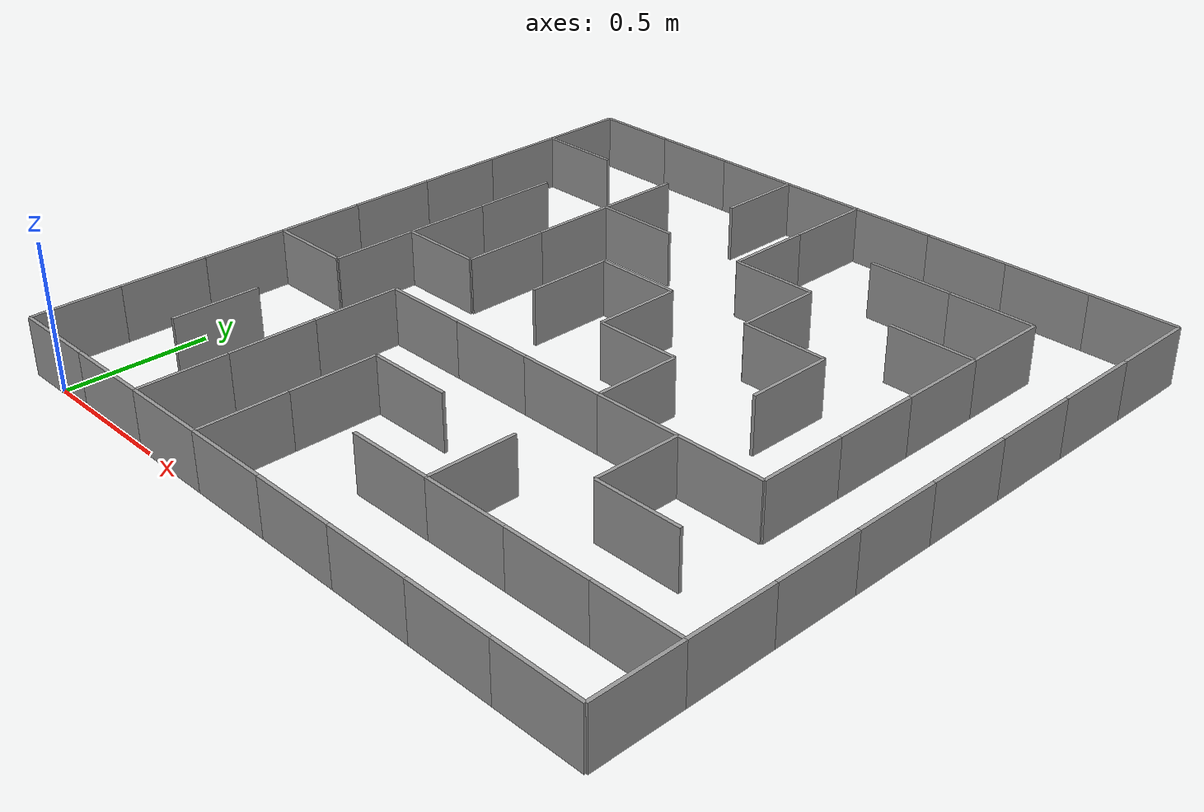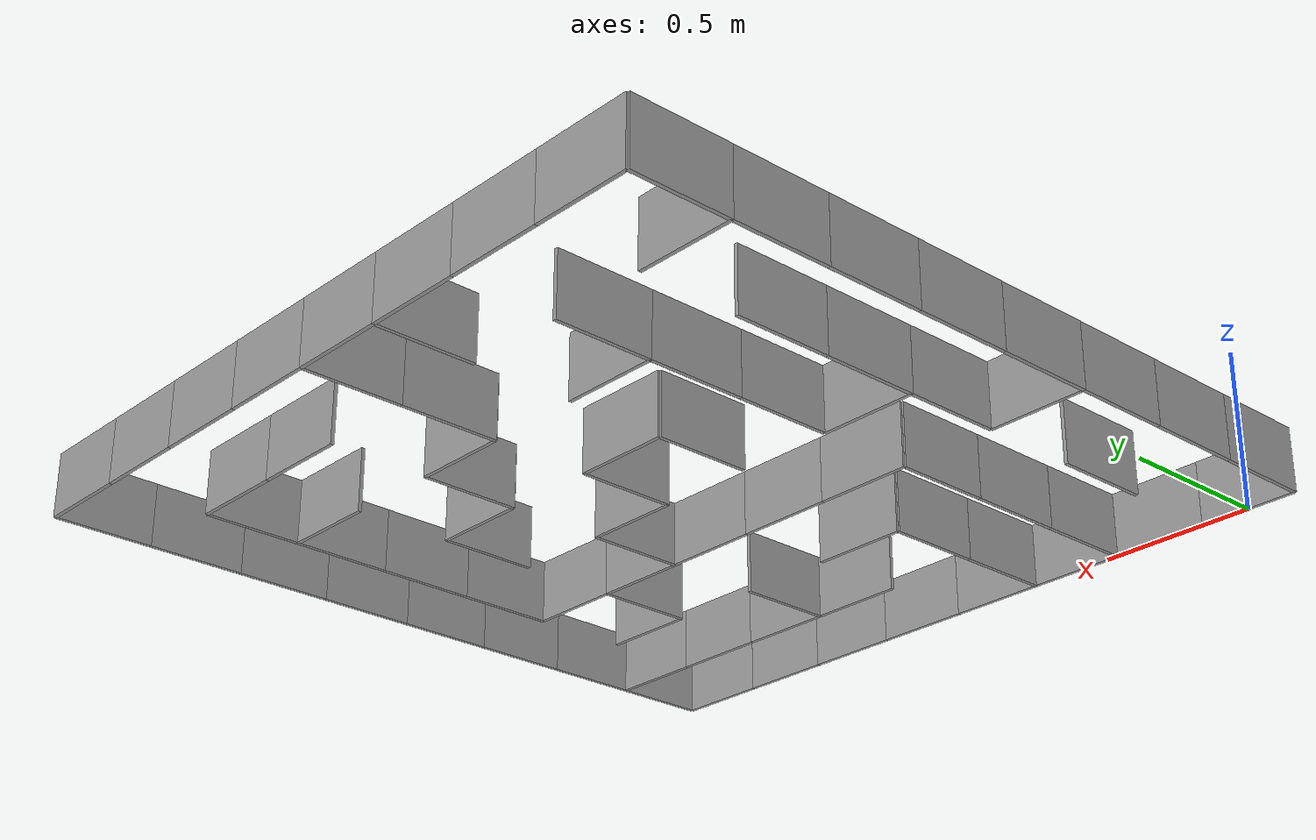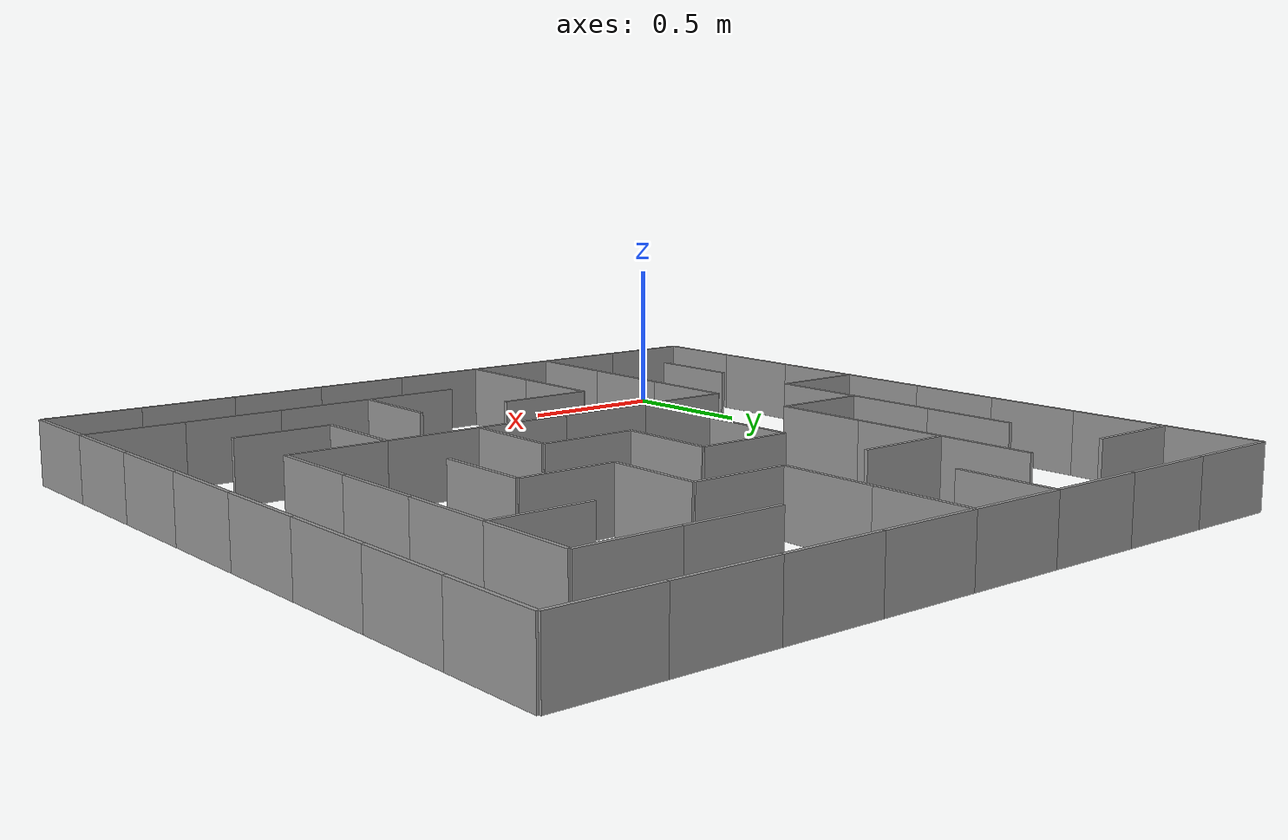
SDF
<?xml version='1.0'?>
<sdf version='1.7'>
  <model name='Untitled'>
    <pose>0 0 0 0 -0 0</pose>
    <link name='Wall_0'>
      <collision name='Wall_0_Collision'>
        <geometry>
          <box>
            <size>0.31 0.012 0.20</size>
          </box>
        </geometry>
        <pose>0 0 0.1 0 -0 0</pose>
      </collision>
      <visual name='Wall_0_Visual'>
        <pose>0 0 0.1 0 -0 0</pose>
        <geometry>
          <box>
            <size>0.31 0.012 0.20</size>
          </box>
        </geometry>
        <material>
          <script>
            <uri>file://media/materials/scripts/gazebo.material</uri>
            <name>Gazebo/Grey</name>
          </script>
          <ambient>1 1 1 1</ambient>
        </material>
        <meta>
          <layer>0</layer>
        </meta>
      </visual>
      <pose>0.0 0.0 0 0 0 0</pose>
    </link><link name='Wall_1'>
      <collision name='Wall_1_Collision'>
        <geometry>
          <box>
            <size>0.31 0.012 0.20</size>
          </box>
        </geometry>
        <pose>0 0 0.1 0 -0 0</pose>
      </collision>
      <visual name='Wall_1_Visual'>
        <pose>0 0 0.1 0 -0 0</pose>
        <geometry>
          <box>
            <size>0.31 0.012 0.20</size>
          </box>
        </geometry>
        <material>
          <script>
            <uri>file://media/materials/scripts/gazebo.material</uri>
            <name>Gazebo/Grey</name>
          </script>
          <ambient>1 1 1 1</ambient>
        </material>
        <meta>
          <layer>0</layer>
        </meta>
      </visual>
      <pose>0.0 0.9299999999999999 0 0 0 0</pose>
    </link><link name='Wall_2'>
      <collision name='Wall_2_Collision'>
        <geometry>
          <box>
            <size>0.31 0.012 0.20</size>
          </box>
        </geometry>
        <pose>0 0 0.1 0 -0 0</pose>
      </collision>
      <visual name='Wall_2_Visual'>
        <pose>0 0 0.1 0 -0 0</pose>
        <geometry>
          <box>
            <size>0.31 0.012 0.20</size>
          </box>
        </geometry>
        <material>
          <script>
            <uri>file://media/materials/scripts/gazebo.material</uri>
            <name>Gazebo/Grey</name>
          </script>
          <ambient>1 1 1 1</ambient>
        </material>
        <meta>
          <layer>0</layer>
        </meta>
      </visual>
      <pose>0.0 2.17 0 0 0 0</pose>
    </link><link name='Wall_3'>
      <collision name='Wall_3_Collision'>
        <geometry>
          <box>
            <size>0.31 0.012 0.20</size>
          </box>
        </geometry>
        <pose>0 0 0.1 0 -0 0</pose>
      </collision>
      <visual name='Wall_3_Visual'>
        <pose>0 0 0.1 0 -0 0</pose>
        <geometry>
          <box>
            <size>0.31 0.012 0.20</size>
          </box>
        </geometry>
        <material>
          <script>
            <uri>file://media/materials/scripts/gazebo.material</uri>
            <name>Gazebo/Grey</name>
          </script>
          <ambient>1 1 1 1</ambient>
        </material>
        <meta>
          <layer>0</layer>
        </meta>
      </visual>
      <pose>0.0 2.48 0 0 0 0</pose>
    </link><link name='Wall_4'>
      <collision name='Wall_4_Collision'>
        <geometry>
          <box>
            <size>0.31 0.012 0.20</size>
          </box>
        </geometry>
        <pose>0 0 0.1 0 -0 0</pose>
      </collision>
      <visual name='Wall_4_Visual'>
        <pose>0 0 0.1 0 -0 0</pose>
        <geometry>
          <box>
            <size>0.31 0.012 0.20</size>
          </box>
        </geometry>
        <material>
          <script>
            <uri>file://media/materials/scripts/gazebo.material</uri>
            <name>Gazebo/Grey</name>
          </script>
          <ambient>1 1 1 1</ambient>
        </material>
        <meta>
          <layer>0</layer>
        </meta>
      </visual>
      <pose>0.31 0.0 0 0 0 0</pose>
    </link><link name='Wall_5'>
      <collision name='Wall_5_Collision'>
        <geometry>
          <box>
            <size>0.31 0.012 0.20</size>
          </box>
        </geometry>
        <pose>0 0 0.1 0 -0 0</pose>
      </collision>
      <visual name='Wall_5_Visual'>
        <pose>0 0 0.1 0 -0 0</pose>
        <geometry>
          <box>
            <size>0.31 0.012 0.20</size>
          </box>
        </geometry>
        <material>
          <script>
            <uri>file://media/materials/scripts/gazebo.material</uri>
            <name>Gazebo/Grey</name>
          </script>
          <ambient>1 1 1 1</ambient>
        </material>
        <meta>
          <layer>0</layer>
        </meta>
      </visual>
      <pose>0.31 1.24 0 0 0 0</pose>
    </link><link name='Wall_6'>
      <collision name='Wall_6_Collision'>
        <geometry>
          <box>
            <size>0.31 0.012 0.20</size>
          </box>
        </geometry>
        <pose>0 0 0.1 0 -0 0</pose>
      </collision>
      <visual name='Wall_6_Visual'>
        <pose>0 0 0.1 0 -0 0</pose>
        <geometry>
          <box>
            <size>0.31 0.012 0.20</size>
          </box>
        </geometry>
        <material>
          <script>
            <uri>file://media/materials/scripts/gazebo.material</uri>
            <name>Gazebo/Grey</name>
          </script>
          <ambient>1 1 1 1</ambient>
        </material>
        <meta>
          <layer>0</layer>
        </meta>
      </visual>
      <pose>0.31 2.48 0 0 0 0</pose>
    </link><link name='Wall_7'>
      <collision name='Wall_7_Collision'>
        <geometry>
          <box>
            <size>0.31 0.012 0.20</size>
          </box>
        </geometry>
        <pose>0 0 0.1 0 -0 0</pose>
      </collision>
      <visual name='Wall_7_Visual'>
        <pose>0 0 0.1 0 -0 0</pose>
        <geometry>
          <box>
            <size>0.31 0.012 0.20</size>
          </box>
        </geometry>
        <material>
          <script>
            <uri>file://media/materials/scripts/gazebo.material</uri>
            <name>Gazebo/Grey</name>
          </script>
          <ambient>1 1 1 1</ambient>
        </material>
        <meta>
          <layer>0</layer>
        </meta>
      </visual>
      <pose>0.62 0.0 0 0 0 0</pose>
    </link><link name='Wall_8'>
      <collision name='Wall_8_Collision'>
        <geometry>
          <box>
            <size>0.31 0.012 0.20</size>
          </box>
        </geometry>
        <pose>0 0 0.1 0 -0 0</pose>
      </collision>
      <visual name='Wall_8_Visual'>
        <pose>0 0 0.1 0 -0 0</pose>
        <geometry>
          <box>
            <size>0.31 0.012 0.20</size>
          </box>
        </geometry>
        <material>
          <script>
            <uri>file://media/materials/scripts/gazebo.material</uri>
            <name>Gazebo/Grey</name>
          </script>
          <ambient>1 1 1 1</ambient>
        </material>
        <meta>
          <layer>0</layer>
        </meta>
      </visual>
      <pose>0.62 0.9299999999999999 0 0 0 0</pose>
    </link><link name='Wall_9'>
      <collision name='Wall_9_Collision'>
        <geometry>
          <box>
            <size>0.31 0.012 0.20</size>
          </box>
        </geometry>
        <pose>0 0 0.1 0 -0 0</pose>
      </collision>
      <visual name='Wall_9_Visual'>
        <pose>0 0 0.1 0 -0 0</pose>
        <geometry>
          <box>
            <size>0.31 0.012 0.20</size>
          </box>
        </geometry>
        <material>
          <script>
            <uri>file://media/materials/scripts/gazebo.material</uri>
            <name>Gazebo/Grey</name>
          </script>
          <ambient>1 1 1 1</ambient>
        </material>
        <meta>
          <layer>0</layer>
        </meta>
      </visual>
      <pose>0.62 1.8599999999999999 0 0 0 0</pose>
    </link><link name='Wall_10'>
      <collision name='Wall_10_Collision'>
        <geometry>
          <box>
            <size>0.31 0.012 0.20</size>
          </box>
        </geometry>
        <pose>0 0 0.1 0 -0 0</pose>
      </collision>
      <visual name='Wall_10_Visual'>
        <pose>0 0 0.1 0 -0 0</pose>
        <geometry>
          <box>
            <size>0.31 0.012 0.20</size>
          </box>
        </geometry>
        <material>
          <script>
            <uri>file://media/materials/scripts/gazebo.material</uri>
            <name>Gazebo/Grey</name>
          </script>
          <ambient>1 1 1 1</ambient>
        </material>
        <meta>
          <layer>0</layer>
        </meta>
      </visual>
      <pose>0.62 2.48 0 0 0 0</pose>
    </link><link name='Wall_11'>
      <collision name='Wall_11_Collision'>
        <geometry>
          <box>
            <size>0.31 0.012 0.20</size>
          </box>
        </geometry>
        <pose>0 0 0.1 0 -0 0</pose>
      </collision>
      <visual name='Wall_11_Visual'>
        <pose>0 0 0.1 0 -0 0</pose>
        <geometry>
          <box>
            <size>0.31 0.012 0.20</size>
          </box>
        </geometry>
        <material>
          <script>
            <uri>file://media/materials/scripts/gazebo.material</uri>
            <name>Gazebo/Grey</name>
          </script>
          <ambient>1 1 1 1</ambient>
        </material>
        <meta>
          <layer>0</layer>
        </meta>
      </visual>
      <pose>0.9299999999999999 0.0 0 0 0 0</pose>
    </link><link name='Wall_12'>
      <collision name='Wall_12_Collision'>
        <geometry>
          <box>
            <size>0.31 0.012 0.20</size>
          </box>
        </geometry>
        <pose>0 0 0.1 0 -0 0</pose>
      </collision>
      <visual name='Wall_12_Visual'>
        <pose>0 0 0.1 0 -0 0</pose>
        <geometry>
          <box>
            <size>0.31 0.012 0.20</size>
          </box>
        </geometry>
        <material>
          <script>
            <uri>file://media/materials/scripts/gazebo.material</uri>
            <name>Gazebo/Grey</name>
          </script>
          <ambient>1 1 1 1</ambient>
        </material>
        <meta>
          <layer>0</layer>
        </meta>
      </visual>
      <pose>0.9299999999999999 0.62 0 0 0 0</pose>
    </link><link name='Wall_13'>
      <collision name='Wall_13_Collision'>
        <geometry>
          <box>
            <size>0.31 0.012 0.20</size>
          </box>
        </geometry>
        <pose>0 0 0.1 0 -0 0</pose>
      </collision>
      <visual name='Wall_13_Visual'>
        <pose>0 0 0.1 0 -0 0</pose>
        <geometry>
          <box>
            <size>0.31 0.012 0.20</size>
          </box>
        </geometry>
        <material>
          <script>
            <uri>file://media/materials/scripts/gazebo.material</uri>
            <name>Gazebo/Grey</name>
          </script>
          <ambient>1 1 1 1</ambient>
        </material>
        <meta>
          <layer>0</layer>
        </meta>
      </visual>
      <pose>0.9299999999999999 0.9299999999999999 0 0 0 0</pose>
    </link><link name='Wall_14'>
      <collision name='Wall_14_Collision'>
        <geometry>
          <box>
            <size>0.31 0.012 0.20</size>
          </box>
        </geometry>
        <pose>0 0 0.1 0 -0 0</pose>
      </collision>
      <visual name='Wall_14_Visual'>
        <pose>0 0 0.1 0 -0 0</pose>
        <geometry>
          <box>
            <size>0.31 0.012 0.20</size>
          </box>
        </geometry>
        <material>
          <script>
            <uri>file://media/materials/scripts/gazebo.material</uri>
            <name>Gazebo/Grey</name>
          </script>
          <ambient>1 1 1 1</ambient>
        </material>
        <meta>
          <layer>0</layer>
        </meta>
      </visual>
      <pose>0.9299999999999999 1.55 0 0 0 0</pose>
    </link><link name='Wall_15'>
      <collision name='Wall_15_Collision'>
        <geometry>
          <box>
            <size>0.31 0.012 0.20</size>
          </box>
        </geometry>
        <pose>0 0 0.1 0 -0 0</pose>
      </collision>
      <visual name='Wall_15_Visual'>
        <pose>0 0 0.1 0 -0 0</pose>
        <geometry>
          <box>
            <size>0.31 0.012 0.20</size>
          </box>
        </geometry>
        <material>
          <script>
            <uri>file://media/materials/scripts/gazebo.material</uri>
            <name>Gazebo/Grey</name>
          </script>
          <ambient>1 1 1 1</ambient>
        </material>
        <meta>
          <layer>0</layer>
        </meta>
      </visual>
      <pose>0.9299999999999999 2.48 0 0 0 0</pose>
    </link><link name='Wall_16'>
      <collision name='Wall_16_Collision'>
        <geometry>
          <box>
            <size>0.31 0.012 0.20</size>
          </box>
        </geometry>
        <pose>0 0 0.1 0 -0 0</pose>
      </collision>
      <visual name='Wall_16_Visual'>
        <pose>0 0 0.1 0 -0 0</pose>
        <geometry>
          <box>
            <size>0.31 0.012 0.20</size>
          </box>
        </geometry>
        <material>
          <script>
            <uri>file://media/materials/scripts/gazebo.material</uri>
            <name>Gazebo/Grey</name>
          </script>
          <ambient>1 1 1 1</ambient>
        </material>
        <meta>
          <layer>0</layer>
        </meta>
      </visual>
      <pose>1.24 0.0 0 0 0 0</pose>
    </link><link name='Wall_17'>
      <collision name='Wall_17_Collision'>
        <geometry>
          <box>
            <size>0.31 0.012 0.20</size>
          </box>
        </geometry>
        <pose>0 0 0.1 0 -0 0</pose>
      </collision>
      <visual name='Wall_17_Visual'>
        <pose>0 0 0.1 0 -0 0</pose>
        <geometry>
          <box>
            <size>0.31 0.012 0.20</size>
          </box>
        </geometry>
        <material>
          <script>
            <uri>file://media/materials/scripts/gazebo.material</uri>
            <name>Gazebo/Grey</name>
          </script>
          <ambient>1 1 1 1</ambient>
        </material>
        <meta>
          <layer>0</layer>
        </meta>
      </visual>
      <pose>1.24 0.31 0 0 0 0</pose>
    </link><link name='Wall_18'>
      <collision name='Wall_18_Collision'>
        <geometry>
          <box>
            <size>0.31 0.012 0.20</size>
          </box>
        </geometry>
        <pose>0 0 0.1 0 -0 0</pose>
      </collision>
      <visual name='Wall_18_Visual'>
        <pose>0 0 0.1 0 -0 0</pose>
        <geometry>
          <box>
            <size>0.31 0.012 0.20</size>
          </box>
        </geometry>
        <material>
          <script>
            <uri>file://media/materials/scripts/gazebo.material</uri>
            <name>Gazebo/Grey</name>
          </script>
          <ambient>1 1 1 1</ambient>
        </material>
        <meta>
          <layer>0</layer>
        </meta>
      </visual>
      <pose>1.24 0.9299999999999999 0 0 0 0</pose>
    </link><link name='Wall_19'>
      <collision name='Wall_19_Collision'>
        <geometry>
          <box>
            <size>0.31 0.012 0.20</size>
          </box>
        </geometry>
        <pose>0 0 0.1 0 -0 0</pose>
      </collision>
      <visual name='Wall_19_Visual'>
        <pose>0 0 0.1 0 -0 0</pose>
        <geometry>
          <box>
            <size>0.31 0.012 0.20</size>
          </box>
        </geometry>
        <material>
          <script>
            <uri>file://media/materials/scripts/gazebo.material</uri>
            <name>Gazebo/Grey</name>
          </script>
          <ambient>1 1 1 1</ambient>
        </material>
        <meta>
          <layer>0</layer>
        </meta>
      </visual>
      <pose>1.24 1.24 0 0 0 0</pose>
    </link><link name='Wall_20'>
      <collision name='Wall_20_Collision'>
        <geometry>
          <box>
            <size>0.31 0.012 0.20</size>
          </box>
        </geometry>
        <pose>0 0 0.1 0 -0 0</pose>
      </collision>
      <visual name='Wall_20_Visual'>
        <pose>0 0 0.1 0 -0 0</pose>
        <geometry>
          <box>
            <size>0.31 0.012 0.20</size>
          </box>
        </geometry>
        <material>
          <script>
            <uri>file://media/materials/scripts/gazebo.material</uri>
            <name>Gazebo/Grey</name>
          </script>
          <ambient>1 1 1 1</ambient>
        </material>
        <meta>
          <layer>0</layer>
        </meta>
      </visual>
      <pose>1.24 1.8599999999999999 0 0 0 0</pose>
    </link><link name='Wall_21'>
      <collision name='Wall_21_Collision'>
        <geometry>
          <box>
            <size>0.31 0.012 0.20</size>
          </box>
        </geometry>
        <pose>0 0 0.1 0 -0 0</pose>
      </collision>
      <visual name='Wall_21_Visual'>
        <pose>0 0 0.1 0 -0 0</pose>
        <geometry>
          <box>
            <size>0.31 0.012 0.20</size>
          </box>
        </geometry>
        <material>
          <script>
            <uri>file://media/materials/scripts/gazebo.material</uri>
            <name>Gazebo/Grey</name>
          </script>
          <ambient>1 1 1 1</ambient>
        </material>
        <meta>
          <layer>0</layer>
        </meta>
      </visual>
      <pose>1.24 2.48 0 0 0 0</pose>
    </link><link name='Wall_22'>
      <collision name='Wall_22_Collision'>
        <geometry>
          <box>
            <size>0.31 0.012 0.20</size>
          </box>
        </geometry>
        <pose>0 0 0.1 0 -0 0</pose>
      </collision>
      <visual name='Wall_22_Visual'>
        <pose>0 0 0.1 0 -0 0</pose>
        <geometry>
          <box>
            <size>0.31 0.012 0.20</size>
          </box>
        </geometry>
        <material>
          <script>
            <uri>file://media/materials/scripts/gazebo.material</uri>
            <name>Gazebo/Grey</name>
          </script>
          <ambient>1 1 1 1</ambient>
        </material>
        <meta>
          <layer>0</layer>
        </meta>
      </visual>
      <pose>1.55 0.0 0 0 0 0</pose>
    </link><link name='Wall_23'>
      <collision name='Wall_23_Collision'>
        <geometry>
          <box>
            <size>0.31 0.012 0.20</size>
          </box>
        </geometry>
        <pose>0 0 0.1 0 -0 0</pose>
      </collision>
      <visual name='Wall_23_Visual'>
        <pose>0 0 0.1 0 -0 0</pose>
        <geometry>
          <box>
            <size>0.31 0.012 0.20</size>
          </box>
        </geometry>
        <material>
          <script>
            <uri>file://media/materials/scripts/gazebo.material</uri>
            <name>Gazebo/Grey</name>
          </script>
          <ambient>1 1 1 1</ambient>
        </material>
        <meta>
          <layer>0</layer>
        </meta>
      </visual>
      <pose>1.55 0.31 0 0 0 0</pose>
    </link><link name='Wall_24'>
      <collision name='Wall_24_Collision'>
        <geometry>
          <box>
            <size>0.31 0.012 0.20</size>
          </box>
        </geometry>
        <pose>0 0 0.1 0 -0 0</pose>
      </collision>
      <visual name='Wall_24_Visual'>
        <pose>0 0 0.1 0 -0 0</pose>
        <geometry>
          <box>
            <size>0.31 0.012 0.20</size>
          </box>
        </geometry>
        <material>
          <script>
            <uri>file://media/materials/scripts/gazebo.material</uri>
            <name>Gazebo/Grey</name>
          </script>
          <ambient>1 1 1 1</ambient>
        </material>
        <meta>
          <layer>0</layer>
        </meta>
      </visual>
      <pose>1.55 0.9299999999999999 0 0 0 0</pose>
    </link><link name='Wall_25'>
      <collision name='Wall_25_Collision'>
        <geometry>
          <box>
            <size>0.31 0.012 0.20</size>
          </box>
        </geometry>
        <pose>0 0 0.1 0 -0 0</pose>
      </collision>
      <visual name='Wall_25_Visual'>
        <pose>0 0 0.1 0 -0 0</pose>
        <geometry>
          <box>
            <size>0.31 0.012 0.20</size>
          </box>
        </geometry>
        <material>
          <script>
            <uri>file://media/materials/scripts/gazebo.material</uri>
            <name>Gazebo/Grey</name>
          </script>
          <ambient>1 1 1 1</ambient>
        </material>
        <meta>
          <layer>0</layer>
        </meta>
      </visual>
      <pose>1.55 1.55 0 0 0 0</pose>
    </link><link name='Wall_26'>
      <collision name='Wall_26_Collision'>
        <geometry>
          <box>
            <size>0.31 0.012 0.20</size>
          </box>
        </geometry>
        <pose>0 0 0.1 0 -0 0</pose>
      </collision>
      <visual name='Wall_26_Visual'>
        <pose>0 0 0.1 0 -0 0</pose>
        <geometry>
          <box>
            <size>0.31 0.012 0.20</size>
          </box>
        </geometry>
        <material>
          <script>
            <uri>file://media/materials/scripts/gazebo.material</uri>
            <name>Gazebo/Grey</name>
          </script>
          <ambient>1 1 1 1</ambient>
        </material>
        <meta>
          <layer>0</layer>
        </meta>
      </visual>
      <pose>1.55 2.17 0 0 0 0</pose>
    </link><link name='Wall_27'>
      <collision name='Wall_27_Collision'>
        <geometry>
          <box>
            <size>0.31 0.012 0.20</size>
          </box>
        </geometry>
        <pose>0 0 0.1 0 -0 0</pose>
      </collision>
      <visual name='Wall_27_Visual'>
        <pose>0 0 0.1 0 -0 0</pose>
        <geometry>
          <box>
            <size>0.31 0.012 0.20</size>
          </box>
        </geometry>
        <material>
          <script>
            <uri>file://media/materials/scripts/gazebo.material</uri>
            <name>Gazebo/Grey</name>
          </script>
          <ambient>1 1 1 1</ambient>
        </material>
        <meta>
          <layer>0</layer>
        </meta>
      </visual>
      <pose>1.55 2.48 0 0 0 0</pose>
    </link><link name='Wall_28'>
      <collision name='Wall_28_Collision'>
        <geometry>
          <box>
            <size>0.31 0.012 0.20</size>
          </box>
        </geometry>
        <pose>0 0 0.1 0 -0 0</pose>
      </collision>
      <visual name='Wall_28_Visual'>
        <pose>0 0 0.1 0 -0 0</pose>
        <geometry>
          <box>
            <size>0.31 0.012 0.20</size>
          </box>
        </geometry>
        <material>
          <script>
            <uri>file://media/materials/scripts/gazebo.material</uri>
            <name>Gazebo/Grey</name>
          </script>
          <ambient>1 1 1 1</ambient>
        </material>
        <meta>
          <layer>0</layer>
        </meta>
      </visual>
      <pose>1.8599999999999999 0.0 0 0 0 0</pose>
    </link><link name='Wall_29'>
      <collision name='Wall_29_Collision'>
        <geometry>
          <box>
            <size>0.31 0.012 0.20</size>
          </box>
        </geometry>
        <pose>0 0 0.1 0 -0 0</pose>
      </collision>
      <visual name='Wall_29_Visual'>
        <pose>0 0 0.1 0 -0 0</pose>
        <geometry>
          <box>
            <size>0.31 0.012 0.20</size>
          </box>
        </geometry>
        <material>
          <script>
            <uri>file://media/materials/scripts/gazebo.material</uri>
            <name>Gazebo/Grey</name>
          </script>
          <ambient>1 1 1 1</ambient>
        </material>
        <meta>
          <layer>0</layer>
        </meta>
      </visual>
      <pose>1.8599999999999999 0.31 0 0 0 0</pose>
    </link><link name='Wall_30'>
      <collision name='Wall_30_Collision'>
        <geometry>
          <box>
            <size>0.31 0.012 0.20</size>
          </box>
        </geometry>
        <pose>0 0 0.1 0 -0 0</pose>
      </collision>
      <visual name='Wall_30_Visual'>
        <pose>0 0 0.1 0 -0 0</pose>
        <geometry>
          <box>
            <size>0.31 0.012 0.20</size>
          </box>
        </geometry>
        <material>
          <script>
            <uri>file://media/materials/scripts/gazebo.material</uri>
            <name>Gazebo/Grey</name>
          </script>
          <ambient>1 1 1 1</ambient>
        </material>
        <meta>
          <layer>0</layer>
        </meta>
      </visual>
      <pose>1.8599999999999999 0.62 0 0 0 0</pose>
    </link><link name='Wall_31'>
      <collision name='Wall_31_Collision'>
        <geometry>
          <box>
            <size>0.31 0.012 0.20</size>
          </box>
        </geometry>
        <pose>0 0 0.1 0 -0 0</pose>
      </collision>
      <visual name='Wall_31_Visual'>
        <pose>0 0 0.1 0 -0 0</pose>
        <geometry>
          <box>
            <size>0.31 0.012 0.20</size>
          </box>
        </geometry>
        <material>
          <script>
            <uri>file://media/materials/scripts/gazebo.material</uri>
            <name>Gazebo/Grey</name>
          </script>
          <ambient>1 1 1 1</ambient>
        </material>
        <meta>
          <layer>0</layer>
        </meta>
      </visual>
      <pose>1.8599999999999999 0.9299999999999999 0 0 0 0</pose>
    </link><link name='Wall_32'>
      <collision name='Wall_32_Collision'>
        <geometry>
          <box>
            <size>0.31 0.012 0.20</size>
          </box>
        </geometry>
        <pose>0 0 0.1 0 -0 0</pose>
      </collision>
      <visual name='Wall_32_Visual'>
        <pose>0 0 0.1 0 -0 0</pose>
        <geometry>
          <box>
            <size>0.31 0.012 0.20</size>
          </box>
        </geometry>
        <material>
          <script>
            <uri>file://media/materials/scripts/gazebo.material</uri>
            <name>Gazebo/Grey</name>
          </script>
          <ambient>1 1 1 1</ambient>
        </material>
        <meta>
          <layer>0</layer>
        </meta>
      </visual>
      <pose>1.8599999999999999 1.8599999999999999 0 0 0 0</pose>
    </link><link name='Wall_33'>
      <collision name='Wall_33_Collision'>
        <geometry>
          <box>
            <size>0.31 0.012 0.20</size>
          </box>
        </geometry>
        <pose>0 0 0.1 0 -0 0</pose>
      </collision>
      <visual name='Wall_33_Visual'>
        <pose>0 0 0.1 0 -0 0</pose>
        <geometry>
          <box>
            <size>0.31 0.012 0.20</size>
          </box>
        </geometry>
        <material>
          <script>
            <uri>file://media/materials/scripts/gazebo.material</uri>
            <name>Gazebo/Grey</name>
          </script>
          <ambient>1 1 1 1</ambient>
        </material>
        <meta>
          <layer>0</layer>
        </meta>
      </visual>
      <pose>1.8599999999999999 2.17 0 0 0 0</pose>
    </link><link name='Wall_34'>
      <collision name='Wall_34_Collision'>
        <geometry>
          <box>
            <size>0.31 0.012 0.20</size>
          </box>
        </geometry>
        <pose>0 0 0.1 0 -0 0</pose>
      </collision>
      <visual name='Wall_34_Visual'>
        <pose>0 0 0.1 0 -0 0</pose>
        <geometry>
          <box>
            <size>0.31 0.012 0.20</size>
          </box>
        </geometry>
        <material>
          <script>
            <uri>file://media/materials/scripts/gazebo.material</uri>
            <name>Gazebo/Grey</name>
          </script>
          <ambient>1 1 1 1</ambient>
        </material>
        <meta>
          <layer>0</layer>
        </meta>
      </visual>
      <pose>1.8599999999999999 2.48 0 0 0 0</pose>
    </link><link name='Wall_35'>
      <collision name='Wall_35_Collision'>
        <geometry>
          <box>
            <size>0.31 0.012 0.20</size>
          </box>
        </geometry>
        <pose>0 0 0.1 0 -0 0</pose>
      </collision>
      <visual name='Wall_35_Visual'>
        <pose>0 0 0.1 0 -0 0</pose>
        <geometry>
          <box>
            <size>0.31 0.012 0.20</size>
          </box>
        </geometry>
        <material>
          <script>
            <uri>file://media/materials/scripts/gazebo.material</uri>
            <name>Gazebo/Grey</name>
          </script>
          <ambient>1 1 1 1</ambient>
        </material>
        <meta>
          <layer>0</layer>
        </meta>
      </visual>
      <pose>2.17 0.0 0 0 0 0</pose>
    </link><link name='Wall_36'>
      <collision name='Wall_36_Collision'>
        <geometry>
          <box>
            <size>0.31 0.012 0.20</size>
          </box>
        </geometry>
        <pose>0 0 0.1 0 -0 0</pose>
      </collision>
      <visual name='Wall_36_Visual'>
        <pose>0 0 0.1 0 -0 0</pose>
        <geometry>
          <box>
            <size>0.31 0.012 0.20</size>
          </box>
        </geometry>
        <material>
          <script>
            <uri>file://media/materials/scripts/gazebo.material</uri>
            <name>Gazebo/Grey</name>
          </script>
          <ambient>1 1 1 1</ambient>
        </material>
        <meta>
          <layer>0</layer>
        </meta>
      </visual>
      <pose>2.17 0.31 0 0 0 0</pose>
    </link><link name='Wall_37'>
      <collision name='Wall_37_Collision'>
        <geometry>
          <box>
            <size>0.31 0.012 0.20</size>
          </box>
        </geometry>
        <pose>0 0 0.1 0 -0 0</pose>
      </collision>
      <visual name='Wall_37_Visual'>
        <pose>0 0 0.1 0 -0 0</pose>
        <geometry>
          <box>
            <size>0.31 0.012 0.20</size>
          </box>
        </geometry>
        <material>
          <script>
            <uri>file://media/materials/scripts/gazebo.material</uri>
            <name>Gazebo/Grey</name>
          </script>
          <ambient>1 1 1 1</ambient>
        </material>
        <meta>
          <layer>0</layer>
        </meta>
      </visual>
      <pose>2.17 2.48 0 0 0 0</pose>
    </link><link name='Wall_38'>
      <collision name='Wall_38_Collision'>
        <geometry>
          <box>
            <size>0.31 0.012 0.20</size>
          </box>
        </geometry>
        <pose>0 0 0.1 0 -0 0</pose>
      </collision>
      <visual name='Wall_38_Visual'>
        <pose>0 0 0.1 0 -0 0</pose>
        <geometry>
          <box>
            <size>0.31 0.012 0.20</size>
          </box>
        </geometry>
        <material>
          <script>
            <uri>file://media/materials/scripts/gazebo.material</uri>
            <name>Gazebo/Grey</name>
          </script>
          <ambient>1 1 1 1</ambient>
        </material>
        <meta>
          <layer>0</layer>
        </meta>
      </visual>
      <pose>-0.155 0.155 0 0 0 1.5708</pose>
    </link><link name='Wall_39'>
      <collision name='Wall_39_Collision'>
        <geometry>
          <box>
            <size>0.31 0.012 0.20</size>
          </box>
        </geometry>
        <pose>0 0 0.1 0 -0 0</pose>
      </collision>
      <visual name='Wall_39_Visual'>
        <pose>0 0 0.1 0 -0 0</pose>
        <geometry>
          <box>
            <size>0.31 0.012 0.20</size>
          </box>
        </geometry>
        <material>
          <script>
            <uri>file://media/materials/scripts/gazebo.material</uri>
            <name>Gazebo/Grey</name>
          </script>
          <ambient>1 1 1 1</ambient>
        </material>
        <meta>
          <layer>0</layer>
        </meta>
      </visual>
      <pose>-0.155 0.46499999999999997 0 0 0 1.5708</pose>
    </link><link name='Wall_40'>
      <collision name='Wall_40_Collision'>
        <geometry>
          <box>
            <size>0.31 0.012 0.20</size>
          </box>
        </geometry>
        <pose>0 0 0.1 0 -0 0</pose>
      </collision>
      <visual name='Wall_40_Visual'>
        <pose>0 0 0.1 0 -0 0</pose>
        <geometry>
          <box>
            <size>0.31 0.012 0.20</size>
          </box>
        </geometry>
        <material>
          <script>
            <uri>file://media/materials/scripts/gazebo.material</uri>
            <name>Gazebo/Grey</name>
          </script>
          <ambient>1 1 1 1</ambient>
        </material>
        <meta>
          <layer>0</layer>
        </meta>
      </visual>
      <pose>-0.155 0.775 0 0 0 1.5708</pose>
    </link><link name='Wall_41'>
      <collision name='Wall_41_Collision'>
        <geometry>
          <box>
            <size>0.31 0.012 0.20</size>
          </box>
        </geometry>
        <pose>0 0 0.1 0 -0 0</pose>
      </collision>
      <visual name='Wall_41_Visual'>
        <pose>0 0 0.1 0 -0 0</pose>
        <geometry>
          <box>
            <size>0.31 0.012 0.20</size>
          </box>
        </geometry>
        <material>
          <script>
            <uri>file://media/materials/scripts/gazebo.material</uri>
            <name>Gazebo/Grey</name>
          </script>
          <ambient>1 1 1 1</ambient>
        </material>
        <meta>
          <layer>0</layer>
        </meta>
      </visual>
      <pose>-0.155 1.085 0 0 0 1.5708</pose>
    </link><link name='Wall_42'>
      <collision name='Wall_42_Collision'>
        <geometry>
          <box>
            <size>0.31 0.012 0.20</size>
          </box>
        </geometry>
        <pose>0 0 0.1 0 -0 0</pose>
      </collision>
      <visual name='Wall_42_Visual'>
        <pose>0 0 0.1 0 -0 0</pose>
        <geometry>
          <box>
            <size>0.31 0.012 0.20</size>
          </box>
        </geometry>
        <material>
          <script>
            <uri>file://media/materials/scripts/gazebo.material</uri>
            <name>Gazebo/Grey</name>
          </script>
          <ambient>1 1 1 1</ambient>
        </material>
        <meta>
          <layer>0</layer>
        </meta>
      </visual>
      <pose>-0.155 1.395 0 0 0 1.5708</pose>
    </link><link name='Wall_43'>
      <collision name='Wall_43_Collision'>
        <geometry>
          <box>
            <size>0.31 0.012 0.20</size>
          </box>
        </geometry>
        <pose>0 0 0.1 0 -0 0</pose>
      </collision>
      <visual name='Wall_43_Visual'>
        <pose>0 0 0.1 0 -0 0</pose>
        <geometry>
          <box>
            <size>0.31 0.012 0.20</size>
          </box>
        </geometry>
        <material>
          <script>
            <uri>file://media/materials/scripts/gazebo.material</uri>
            <name>Gazebo/Grey</name>
          </script>
          <ambient>1 1 1 1</ambient>
        </material>
        <meta>
          <layer>0</layer>
        </meta>
      </visual>
      <pose>-0.155 1.705 0 0 0 1.5708</pose>
    </link><link name='Wall_44'>
      <collision name='Wall_44_Collision'>
        <geometry>
          <box>
            <size>0.31 0.012 0.20</size>
          </box>
        </geometry>
        <pose>0 0 0.1 0 -0 0</pose>
      </collision>
      <visual name='Wall_44_Visual'>
        <pose>0 0 0.1 0 -0 0</pose>
        <geometry>
          <box>
            <size>0.31 0.012 0.20</size>
          </box>
        </geometry>
        <material>
          <script>
            <uri>file://media/materials/scripts/gazebo.material</uri>
            <name>Gazebo/Grey</name>
          </script>
          <ambient>1 1 1 1</ambient>
        </material>
        <meta>
          <layer>0</layer>
        </meta>
      </visual>
      <pose>-0.155 2.0149999999999997 0 0 0 1.5708</pose>
    </link><link name='Wall_45'>
      <collision name='Wall_45_Collision'>
        <geometry>
          <box>
            <size>0.31 0.012 0.20</size>
          </box>
        </geometry>
        <pose>0 0 0.1 0 -0 0</pose>
      </collision>
      <visual name='Wall_45_Visual'>
        <pose>0 0 0.1 0 -0 0</pose>
        <geometry>
          <box>
            <size>0.31 0.012 0.20</size>
          </box>
        </geometry>
        <material>
          <script>
            <uri>file://media/materials/scripts/gazebo.material</uri>
            <name>Gazebo/Grey</name>
          </script>
          <ambient>1 1 1 1</ambient>
        </material>
        <meta>
          <layer>0</layer>
        </meta>
      </visual>
      <pose>-0.155 2.3249999999999997 0 0 0 1.5708</pose>
    </link><link name='Wall_46'>
      <collision name='Wall_46_Collision'>
        <geometry>
          <box>
            <size>0.31 0.012 0.20</size>
          </box>
        </geometry>
        <pose>0 0 0.1 0 -0 0</pose>
      </collision>
      <visual name='Wall_46_Visual'>
        <pose>0 0 0.1 0 -0 0</pose>
        <geometry>
          <box>
            <size>0.31 0.012 0.20</size>
          </box>
        </geometry>
        <material>
          <script>
            <uri>file://media/materials/scripts/gazebo.material</uri>
            <name>Gazebo/Grey</name>
          </script>
          <ambient>1 1 1 1</ambient>
        </material>
        <meta>
          <layer>0</layer>
        </meta>
      </visual>
      <pose>0.155 0.46499999999999997 0 0 0 1.5708</pose>
    </link><link name='Wall_47'>
      <collision name='Wall_47_Collision'>
        <geometry>
          <box>
            <size>0.31 0.012 0.20</size>
          </box>
        </geometry>
        <pose>0 0 0.1 0 -0 0</pose>
      </collision>
      <visual name='Wall_47_Visual'>
        <pose>0 0 0.1 0 -0 0</pose>
        <geometry>
          <box>
            <size>0.31 0.012 0.20</size>
          </box>
        </geometry>
        <material>
          <script>
            <uri>file://media/materials/scripts/gazebo.material</uri>
            <name>Gazebo/Grey</name>
          </script>
          <ambient>1 1 1 1</ambient>
        </material>
        <meta>
          <layer>0</layer>
        </meta>
      </visual>
      <pose>0.155 1.085 0 0 0 1.5708</pose>
    </link><link name='Wall_48'>
      <collision name='Wall_48_Collision'>
        <geometry>
          <box>
            <size>0.31 0.012 0.20</size>
          </box>
        </geometry>
        <pose>0 0 0.1 0 -0 0</pose>
      </collision>
      <visual name='Wall_48_Visual'>
        <pose>0 0 0.1 0 -0 0</pose>
        <geometry>
          <box>
            <size>0.31 0.012 0.20</size>
          </box>
        </geometry>
        <material>
          <script>
            <uri>file://media/materials/scripts/gazebo.material</uri>
            <name>Gazebo/Grey</name>
          </script>
          <ambient>1 1 1 1</ambient>
        </material>
        <meta>
          <layer>0</layer>
        </meta>
      </visual>
      <pose>0.155 1.395 0 0 0 1.5708</pose>
    </link><link name='Wall_49'>
      <collision name='Wall_49_Collision'>
        <geometry>
          <box>
            <size>0.31 0.012 0.20</size>
          </box>
        </geometry>
        <pose>0 0 0.1 0 -0 0</pose>
      </collision>
      <visual name='Wall_49_Visual'>
        <pose>0 0 0.1 0 -0 0</pose>
        <geometry>
          <box>
            <size>0.31 0.012 0.20</size>
          </box>
        </geometry>
        <material>
          <script>
            <uri>file://media/materials/scripts/gazebo.material</uri>
            <name>Gazebo/Grey</name>
          </script>
          <ambient>1 1 1 1</ambient>
        </material>
        <meta>
          <layer>0</layer>
        </meta>
      </visual>
      <pose>0.155 1.705 0 0 0 1.5708</pose>
    </link><link name='Wall_50'>
      <collision name='Wall_50_Collision'>
        <geometry>
          <box>
            <size>0.31 0.012 0.20</size>
          </box>
        </geometry>
        <pose>0 0 0.1 0 -0 0</pose>
      </collision>
      <visual name='Wall_50_Visual'>
        <pose>0 0 0.1 0 -0 0</pose>
        <geometry>
          <box>
            <size>0.31 0.012 0.20</size>
          </box>
        </geometry>
        <material>
          <script>
            <uri>file://media/materials/scripts/gazebo.material</uri>
            <name>Gazebo/Grey</name>
          </script>
          <ambient>1 1 1 1</ambient>
        </material>
        <meta>
          <layer>0</layer>
        </meta>
      </visual>
      <pose>0.46499999999999997 0.155 0 0 0 1.5708</pose>
    </link><link name='Wall_51'>
      <collision name='Wall_51_Collision'>
        <geometry>
          <box>
            <size>0.31 0.012 0.20</size>
          </box>
        </geometry>
        <pose>0 0 0.1 0 -0 0</pose>
      </collision>
      <visual name='Wall_51_Visual'>
        <pose>0 0 0.1 0 -0 0</pose>
        <geometry>
          <box>
            <size>0.31 0.012 0.20</size>
          </box>
        </geometry>
        <material>
          <script>
            <uri>file://media/materials/scripts/gazebo.material</uri>
            <name>Gazebo/Grey</name>
          </script>
          <ambient>1 1 1 1</ambient>
        </material>
        <meta>
          <layer>0</layer>
        </meta>
      </visual>
      <pose>0.46499999999999997 0.46499999999999997 0 0 0 1.5708</pose>
    </link><link name='Wall_52'>
      <collision name='Wall_52_Collision'>
        <geometry>
          <box>
            <size>0.31 0.012 0.20</size>
          </box>
        </geometry>
        <pose>0 0 0.1 0 -0 0</pose>
      </collision>
      <visual name='Wall_52_Visual'>
        <pose>0 0 0.1 0 -0 0</pose>
        <geometry>
          <box>
            <size>0.31 0.012 0.20</size>
          </box>
        </geometry>
        <material>
          <script>
            <uri>file://media/materials/scripts/gazebo.material</uri>
            <name>Gazebo/Grey</name>
          </script>
          <ambient>1 1 1 1</ambient>
        </material>
        <meta>
          <layer>0</layer>
        </meta>
      </visual>
      <pose>0.46499999999999997 0.775 0 0 0 1.5708</pose>
    </link><link name='Wall_53'>
      <collision name='Wall_53_Collision'>
        <geometry>
          <box>
            <size>0.31 0.012 0.20</size>
          </box>
        </geometry>
        <pose>0 0 0.1 0 -0 0</pose>
      </collision>
      <visual name='Wall_53_Visual'>
        <pose>0 0 0.1 0 -0 0</pose>
        <geometry>
          <box>
            <size>0.31 0.012 0.20</size>
          </box>
        </geometry>
        <material>
          <script>
            <uri>file://media/materials/scripts/gazebo.material</uri>
            <name>Gazebo/Grey</name>
          </script>
          <ambient>1 1 1 1</ambient>
        </material>
        <meta>
          <layer>0</layer>
        </meta>
      </visual>
      <pose>0.46499999999999997 1.395 0 0 0 1.5708</pose>
    </link><link name='Wall_54'>
      <collision name='Wall_54_Collision'>
        <geometry>
          <box>
            <size>0.31 0.012 0.20</size>
          </box>
        </geometry>
        <pose>0 0 0.1 0 -0 0</pose>
      </collision>
      <visual name='Wall_54_Visual'>
        <pose>0 0 0.1 0 -0 0</pose>
        <geometry>
          <box>
            <size>0.31 0.012 0.20</size>
          </box>
        </geometry>
        <material>
          <script>
            <uri>file://media/materials/scripts/gazebo.material</uri>
            <name>Gazebo/Grey</name>
          </script>
          <ambient>1 1 1 1</ambient>
        </material>
        <meta>
          <layer>0</layer>
        </meta>
      </visual>
      <pose>0.46499999999999997 1.705 0 0 0 1.5708</pose>
    </link><link name='Wall_55'>
      <collision name='Wall_55_Collision'>
        <geometry>
          <box>
            <size>0.31 0.012 0.20</size>
          </box>
        </geometry>
        <pose>0 0 0.1 0 -0 0</pose>
      </collision>
      <visual name='Wall_55_Visual'>
        <pose>0 0 0.1 0 -0 0</pose>
        <geometry>
          <box>
            <size>0.31 0.012 0.20</size>
          </box>
        </geometry>
        <material>
          <script>
            <uri>file://media/materials/scripts/gazebo.material</uri>
            <name>Gazebo/Grey</name>
          </script>
          <ambient>1 1 1 1</ambient>
        </material>
        <meta>
          <layer>0</layer>
        </meta>
      </visual>
      <pose>0.46499999999999997 2.0149999999999997 0 0 0 1.5708</pose>
    </link><link name='Wall_56'>
      <collision name='Wall_56_Collision'>
        <geometry>
          <box>
            <size>0.31 0.012 0.20</size>
          </box>
        </geometry>
        <pose>0 0 0.1 0 -0 0</pose>
      </collision>
      <visual name='Wall_56_Visual'>
        <pose>0 0 0.1 0 -0 0</pose>
        <geometry>
          <box>
            <size>0.31 0.012 0.20</size>
          </box>
        </geometry>
        <material>
          <script>
            <uri>file://media/materials/scripts/gazebo.material</uri>
            <name>Gazebo/Grey</name>
          </script>
          <ambient>1 1 1 1</ambient>
        </material>
        <meta>
          <layer>0</layer>
        </meta>
      </visual>
      <pose>0.7749999999999999 0.155 0 0 0 1.5708</pose>
    </link><link name='Wall_57'>
      <collision name='Wall_57_Collision'>
        <geometry>
          <box>
            <size>0.31 0.012 0.20</size>
          </box>
        </geometry>
        <pose>0 0 0.1 0 -0 0</pose>
      </collision>
      <visual name='Wall_57_Visual'>
        <pose>0 0 0.1 0 -0 0</pose>
        <geometry>
          <box>
            <size>0.31 0.012 0.20</size>
          </box>
        </geometry>
        <material>
          <script>
            <uri>file://media/materials/scripts/gazebo.material</uri>
            <name>Gazebo/Grey</name>
          </script>
          <ambient>1 1 1 1</ambient>
        </material>
        <meta>
          <layer>0</layer>
        </meta>
      </visual>
      <pose>0.7749999999999999 0.46499999999999997 0 0 0 1.5708</pose>
    </link><link name='Wall_58'>
      <collision name='Wall_58_Collision'>
        <geometry>
          <box>
            <size>0.31 0.012 0.20</size>
          </box>
        </geometry>
        <pose>0 0 0.1 0 -0 0</pose>
      </collision>
      <visual name='Wall_58_Visual'>
        <pose>0 0 0.1 0 -0 0</pose>
        <geometry>
          <box>
            <size>0.31 0.012 0.20</size>
          </box>
        </geometry>
        <material>
          <script>
            <uri>file://media/materials/scripts/gazebo.material</uri>
            <name>Gazebo/Grey</name>
          </script>
          <ambient>1 1 1 1</ambient>
        </material>
        <meta>
          <layer>0</layer>
        </meta>
      </visual>
      <pose>0.7749999999999999 1.395 0 0 0 1.5708</pose>
    </link><link name='Wall_59'>
      <collision name='Wall_59_Collision'>
        <geometry>
          <box>
            <size>0.31 0.012 0.20</size>
          </box>
        </geometry>
        <pose>0 0 0.1 0 -0 0</pose>
      </collision>
      <visual name='Wall_59_Visual'>
        <pose>0 0 0.1 0 -0 0</pose>
        <geometry>
          <box>
            <size>0.31 0.012 0.20</size>
          </box>
        </geometry>
        <material>
          <script>
            <uri>file://media/materials/scripts/gazebo.material</uri>
            <name>Gazebo/Grey</name>
          </script>
          <ambient>1 1 1 1</ambient>
        </material>
        <meta>
          <layer>0</layer>
        </meta>
      </visual>
      <pose>0.7749999999999999 2.3249999999999997 0 0 0 1.5708</pose>
    </link><link name='Wall_60'>
      <collision name='Wall_60_Collision'>
        <geometry>
          <box>
            <size>0.31 0.012 0.20</size>
          </box>
        </geometry>
        <pose>0 0 0.1 0 -0 0</pose>
      </collision>
      <visual name='Wall_60_Visual'>
        <pose>0 0 0.1 0 -0 0</pose>
        <geometry>
          <box>
            <size>0.31 0.012 0.20</size>
          </box>
        </geometry>
        <material>
          <script>
            <uri>file://media/materials/scripts/gazebo.material</uri>
            <name>Gazebo/Grey</name>
          </script>
          <ambient>1 1 1 1</ambient>
        </material>
        <meta>
          <layer>0</layer>
        </meta>
      </visual>
      <pose>1.085 1.395 0 0 0 1.5708</pose>
    </link><link name='Wall_61'>
      <collision name='Wall_61_Collision'>
        <geometry>
          <box>
            <size>0.31 0.012 0.20</size>
          </box>
        </geometry>
        <pose>0 0 0.1 0 -0 0</pose>
      </collision>
      <visual name='Wall_61_Visual'>
        <pose>0 0 0.1 0 -0 0</pose>
        <geometry>
          <box>
            <size>0.31 0.012 0.20</size>
          </box>
        </geometry>
        <material>
          <script>
            <uri>file://media/materials/scripts/gazebo.material</uri>
            <name>Gazebo/Grey</name>
          </script>
          <ambient>1 1 1 1</ambient>
        </material>
        <meta>
          <layer>0</layer>
        </meta>
      </visual>
      <pose>1.085 2.0149999999999997 0 0 0 1.5708</pose>
    </link><link name='Wall_62'>
      <collision name='Wall_62_Collision'>
        <geometry>
          <box>
            <size>0.31 0.012 0.20</size>
          </box>
        </geometry>
        <pose>0 0 0.1 0 -0 0</pose>
      </collision>
      <visual name='Wall_62_Visual'>
        <pose>0 0 0.1 0 -0 0</pose>
        <geometry>
          <box>
            <size>0.31 0.012 0.20</size>
          </box>
        </geometry>
        <material>
          <script>
            <uri>file://media/materials/scripts/gazebo.material</uri>
            <name>Gazebo/Grey</name>
          </script>
          <ambient>1 1 1 1</ambient>
        </material>
        <meta>
          <layer>0</layer>
        </meta>
      </visual>
      <pose>1.085 2.3249999999999997 0 0 0 1.5708</pose>
    </link><link name='Wall_63'>
      <collision name='Wall_63_Collision'>
        <geometry>
          <box>
            <size>0.31 0.012 0.20</size>
          </box>
        </geometry>
        <pose>0 0 0.1 0 -0 0</pose>
      </collision>
      <visual name='Wall_63_Visual'>
        <pose>0 0 0.1 0 -0 0</pose>
        <geometry>
          <box>
            <size>0.31 0.012 0.20</size>
          </box>
        </geometry>
        <material>
          <script>
            <uri>file://media/materials/scripts/gazebo.material</uri>
            <name>Gazebo/Grey</name>
          </script>
          <ambient>1 1 1 1</ambient>
        </material>
        <meta>
          <layer>0</layer>
        </meta>
      </visual>
      <pose>1.395 0.46499999999999997 0 0 0 1.5708</pose>
    </link><link name='Wall_64'>
      <collision name='Wall_64_Collision'>
        <geometry>
          <box>
            <size>0.31 0.012 0.20</size>
          </box>
        </geometry>
        <pose>0 0 0.1 0 -0 0</pose>
      </collision>
      <visual name='Wall_64_Visual'>
        <pose>0 0 0.1 0 -0 0</pose>
        <geometry>
          <box>
            <size>0.31 0.012 0.20</size>
          </box>
        </geometry>
        <material>
          <script>
            <uri>file://media/materials/scripts/gazebo.material</uri>
            <name>Gazebo/Grey</name>
          </script>
          <ambient>1 1 1 1</ambient>
        </material>
        <meta>
          <layer>0</layer>
        </meta>
      </visual>
      <pose>1.395 1.085 0 0 0 1.5708</pose>
    </link><link name='Wall_65'>
      <collision name='Wall_65_Collision'>
        <geometry>
          <box>
            <size>0.31 0.012 0.20</size>
          </box>
        </geometry>
        <pose>0 0 0.1 0 -0 0</pose>
      </collision>
      <visual name='Wall_65_Visual'>
        <pose>0 0 0.1 0 -0 0</pose>
        <geometry>
          <box>
            <size>0.31 0.012 0.20</size>
          </box>
        </geometry>
        <material>
          <script>
            <uri>file://media/materials/scripts/gazebo.material</uri>
            <name>Gazebo/Grey</name>
          </script>
          <ambient>1 1 1 1</ambient>
        </material>
        <meta>
          <layer>0</layer>
        </meta>
      </visual>
      <pose>1.395 1.705 0 0 0 1.5708</pose>
    </link><link name='Wall_66'>
      <collision name='Wall_66_Collision'>
        <geometry>
          <box>
            <size>0.31 0.012 0.20</size>
          </box>
        </geometry>
        <pose>0 0 0.1 0 -0 0</pose>
      </collision>
      <visual name='Wall_66_Visual'>
        <pose>0 0 0.1 0 -0 0</pose>
        <geometry>
          <box>
            <size>0.31 0.012 0.20</size>
          </box>
        </geometry>
        <material>
          <script>
            <uri>file://media/materials/scripts/gazebo.material</uri>
            <name>Gazebo/Grey</name>
          </script>
          <ambient>1 1 1 1</ambient>
        </material>
        <meta>
          <layer>0</layer>
        </meta>
      </visual>
      <pose>1.7049999999999998 0.775 0 0 0 1.5708</pose>
    </link><link name='Wall_67'>
      <collision name='Wall_67_Collision'>
        <geometry>
          <box>
            <size>0.31 0.012 0.20</size>
          </box>
        </geometry>
        <pose>0 0 0.1 0 -0 0</pose>
      </collision>
      <visual name='Wall_67_Visual'>
        <pose>0 0 0.1 0 -0 0</pose>
        <geometry>
          <box>
            <size>0.31 0.012 0.20</size>
          </box>
        </geometry>
        <material>
          <script>
            <uri>file://media/materials/scripts/gazebo.material</uri>
            <name>Gazebo/Grey</name>
          </script>
          <ambient>1 1 1 1</ambient>
        </material>
        <meta>
          <layer>0</layer>
        </meta>
      </visual>
      <pose>1.7049999999999998 1.395 0 0 0 1.5708</pose>
    </link><link name='Wall_68'>
      <collision name='Wall_68_Collision'>
        <geometry>
          <box>
            <size>0.31 0.012 0.20</size>
          </box>
        </geometry>
        <pose>0 0 0.1 0 -0 0</pose>
      </collision>
      <visual name='Wall_68_Visual'>
        <pose>0 0 0.1 0 -0 0</pose>
        <geometry>
          <box>
            <size>0.31 0.012 0.20</size>
          </box>
        </geometry>
        <material>
          <script>
            <uri>file://media/materials/scripts/gazebo.material</uri>
            <name>Gazebo/Grey</name>
          </script>
          <ambient>1 1 1 1</ambient>
        </material>
        <meta>
          <layer>0</layer>
        </meta>
      </visual>
      <pose>2.015 1.085 0 0 0 1.5708</pose>
    </link><link name='Wall_69'>
      <collision name='Wall_69_Collision'>
        <geometry>
          <box>
            <size>0.31 0.012 0.20</size>
          </box>
        </geometry>
        <pose>0 0 0.1 0 -0 0</pose>
      </collision>
      <visual name='Wall_69_Visual'>
        <pose>0 0 0.1 0 -0 0</pose>
        <geometry>
          <box>
            <size>0.31 0.012 0.20</size>
          </box>
        </geometry>
        <material>
          <script>
            <uri>file://media/materials/scripts/gazebo.material</uri>
            <name>Gazebo/Grey</name>
          </script>
          <ambient>1 1 1 1</ambient>
        </material>
        <meta>
          <layer>0</layer>
        </meta>
      </visual>
      <pose>2.015 1.395 0 0 0 1.5708</pose>
    </link><link name='Wall_70'>
      <collision name='Wall_70_Collision'>
        <geometry>
          <box>
            <size>0.31 0.012 0.20</size>
          </box>
        </geometry>
        <pose>0 0 0.1 0 -0 0</pose>
      </collision>
      <visual name='Wall_70_Visual'>
        <pose>0 0 0.1 0 -0 0</pose>
        <geometry>
          <box>
            <size>0.31 0.012 0.20</size>
          </box>
        </geometry>
        <material>
          <script>
            <uri>file://media/materials/scripts/gazebo.material</uri>
            <name>Gazebo/Grey</name>
          </script>
          <ambient>1 1 1 1</ambient>
        </material>
        <meta>
          <layer>0</layer>
        </meta>
      </visual>
      <pose>2.015 1.705 0 0 0 1.5708</pose>
    </link><link name='Wall_71'>
      <collision name='Wall_71_Collision'>
        <geometry>
          <box>
            <size>0.31 0.012 0.20</size>
          </box>
        </geometry>
        <pose>0 0 0.1 0 -0 0</pose>
      </collision>
      <visual name='Wall_71_Visual'>
        <pose>0 0 0.1 0 -0 0</pose>
        <geometry>
          <box>
            <size>0.31 0.012 0.20</size>
          </box>
        </geometry>
        <material>
          <script>
            <uri>file://media/materials/scripts/gazebo.material</uri>
            <name>Gazebo/Grey</name>
          </script>
          <ambient>1 1 1 1</ambient>
        </material>
        <meta>
          <layer>0</layer>
        </meta>
      </visual>
      <pose>2.015 2.0149999999999997 0 0 0 1.5708</pose>
    </link><link name='Wall_72'>
      <collision name='Wall_72_Collision'>
        <geometry>
          <box>
            <size>0.31 0.012 0.20</size>
          </box>
        </geometry>
        <pose>0 0 0.1 0 -0 0</pose>
      </collision>
      <visual name='Wall_72_Visual'>
        <pose>0 0 0.1 0 -0 0</pose>
        <geometry>
          <box>
            <size>0.31 0.012 0.20</size>
          </box>
        </geometry>
        <material>
          <script>
            <uri>file://media/materials/scripts/gazebo.material</uri>
            <name>Gazebo/Grey</name>
          </script>
          <ambient>1 1 1 1</ambient>
        </material>
        <meta>
          <layer>0</layer>
        </meta>
      </visual>
      <pose>2.325 0.155 0 0 0 1.5708</pose>
    </link><link name='Wall_73'>
      <collision name='Wall_73_Collision'>
        <geometry>
          <box>
            <size>0.31 0.012 0.20</size>
          </box>
        </geometry>
        <pose>0 0 0.1 0 -0 0</pose>
      </collision>
      <visual name='Wall_73_Visual'>
        <pose>0 0 0.1 0 -0 0</pose>
        <geometry>
          <box>
            <size>0.31 0.012 0.20</size>
          </box>
        </geometry>
        <material>
          <script>
            <uri>file://media/materials/scripts/gazebo.material</uri>
            <name>Gazebo/Grey</name>
          </script>
          <ambient>1 1 1 1</ambient>
        </material>
        <meta>
          <layer>0</layer>
        </meta>
      </visual>
      <pose>2.325 0.46499999999999997 0 0 0 1.5708</pose>
    </link><link name='Wall_74'>
      <collision name='Wall_74_Collision'>
        <geometry>
          <box>
            <size>0.31 0.012 0.20</size>
          </box>
        </geometry>
        <pose>0 0 0.1 0 -0 0</pose>
      </collision>
      <visual name='Wall_74_Visual'>
        <pose>0 0 0.1 0 -0 0</pose>
        <geometry>
          <box>
            <size>0.31 0.012 0.20</size>
          </box>
        </geometry>
        <material>
          <script>
            <uri>file://media/materials/scripts/gazebo.material</uri>
            <name>Gazebo/Grey</name>
          </script>
          <ambient>1 1 1 1</ambient>
        </material>
        <meta>
          <layer>0</layer>
        </meta>
      </visual>
      <pose>2.325 0.775 0 0 0 1.5708</pose>
    </link><link name='Wall_75'>
      <collision name='Wall_75_Collision'>
        <geometry>
          <box>
            <size>0.31 0.012 0.20</size>
          </box>
        </geometry>
        <pose>0 0 0.1 0 -0 0</pose>
      </collision>
      <visual name='Wall_75_Visual'>
        <pose>0 0 0.1 0 -0 0</pose>
        <geometry>
          <box>
            <size>0.31 0.012 0.20</size>
          </box>
        </geometry>
        <material>
          <script>
            <uri>file://media/materials/scripts/gazebo.material</uri>
            <name>Gazebo/Grey</name>
          </script>
          <ambient>1 1 1 1</ambient>
        </material>
        <meta>
          <layer>0</layer>
        </meta>
      </visual>
      <pose>2.325 1.085 0 0 0 1.5708</pose>
    </link><link name='Wall_76'>
      <collision name='Wall_76_Collision'>
        <geometry>
          <box>
            <size>0.31 0.012 0.20</size>
          </box>
        </geometry>
        <pose>0 0 0.1 0 -0 0</pose>
      </collision>
      <visual name='Wall_76_Visual'>
        <pose>0 0 0.1 0 -0 0</pose>
        <geometry>
          <box>
            <size>0.31 0.012 0.20</size>
          </box>
        </geometry>
        <material>
          <script>
            <uri>file://media/materials/scripts/gazebo.material</uri>
            <name>Gazebo/Grey</name>
          </script>
          <ambient>1 1 1 1</ambient>
        </material>
        <meta>
          <layer>0</layer>
        </meta>
      </visual>
      <pose>2.325 1.395 0 0 0 1.5708</pose>
    </link><link name='Wall_77'>
      <collision name='Wall_77_Collision'>
        <geometry>
          <box>
            <size>0.31 0.012 0.20</size>
          </box>
        </geometry>
        <pose>0 0 0.1 0 -0 0</pose>
      </collision>
      <visual name='Wall_77_Visual'>
        <pose>0 0 0.1 0 -0 0</pose>
        <geometry>
          <box>
            <size>0.31 0.012 0.20</size>
          </box>
        </geometry>
        <material>
          <script>
            <uri>file://media/materials/scripts/gazebo.material</uri>
            <name>Gazebo/Grey</name>
          </script>
          <ambient>1 1 1 1</ambient>
        </material>
        <meta>
          <layer>0</layer>
        </meta>
      </visual>
      <pose>2.325 1.705 0 0 0 1.5708</pose>
    </link><link name='Wall_78'>
      <collision name='Wall_78_Collision'>
        <geometry>
          <box>
            <size>0.31 0.012 0.20</size>
          </box>
        </geometry>
        <pose>0 0 0.1 0 -0 0</pose>
      </collision>
      <visual name='Wall_78_Visual'>
        <pose>0 0 0.1 0 -0 0</pose>
        <geometry>
          <box>
            <size>0.31 0.012 0.20</size>
          </box>
        </geometry>
        <material>
          <script>
            <uri>file://media/materials/scripts/gazebo.material</uri>
            <name>Gazebo/Grey</name>
          </script>
          <ambient>1 1 1 1</ambient>
        </material>
        <meta>
          <layer>0</layer>
        </meta>
      </visual>
      <pose>2.325 2.0149999999999997 0 0 0 1.5708</pose>
    </link><link name='Wall_79'>
      <collision name='Wall_79_Collision'>
        <geometry>
          <box>
            <size>0.31 0.012 0.20</size>
          </box>
        </geometry>
        <pose>0 0 0.1 0 -0 0</pose>
      </collision>
      <visual name='Wall_79_Visual'>
        <pose>0 0 0.1 0 -0 0</pose>
        <geometry>
          <box>
            <size>0.31 0.012 0.20</size>
          </box>
        </geometry>
        <material>
          <script>
            <uri>file://media/materials/scripts/gazebo.material</uri>
            <name>Gazebo/Grey</name>
          </script>
          <ambient>1 1 1 1</ambient>
        </material>
        <meta>
          <layer>0</layer>
        </meta>
      </visual>
      <pose>2.325 2.3249999999999997 0 0 0 1.5708</pose>
    </link><static>1</static>
  </model>
</sdf>
